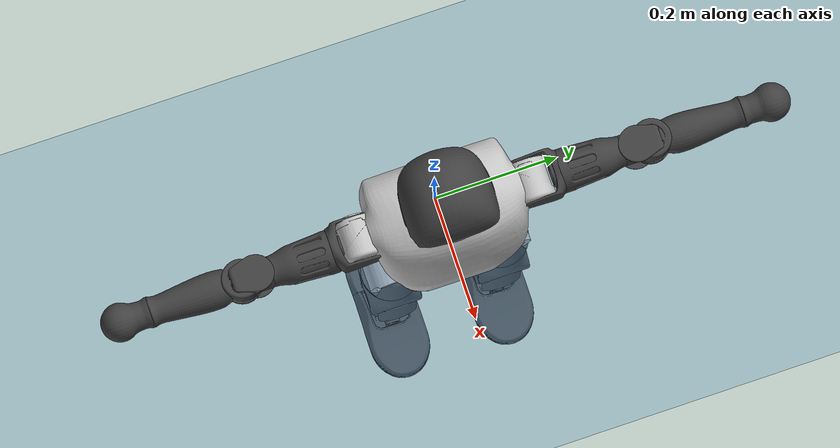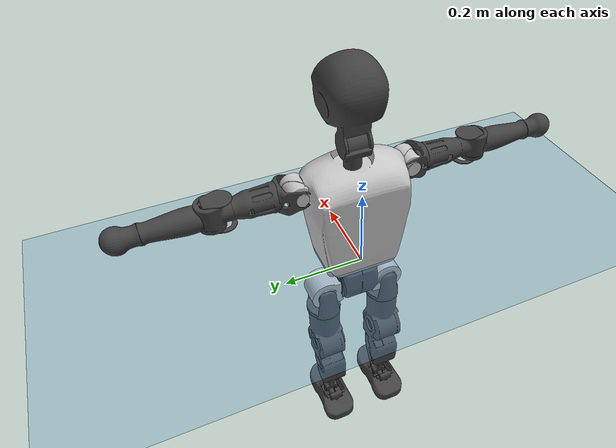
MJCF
<mujoco model="T1">
  <compiler angle="radian" assetdir="assets" balanceinertia="true" inertiafromgeom="false"/>

  <option timestep="0.005" density="1.2" viscosity="2e-05"/>

  <size nkey="1"/>

  <visual>
    <quality shadowsize="8192"/>
    <map shadowclip="0.5"/>
  </visual>

  <default>
    <default class="/">
      <joint armature="0.01" damping="0.01" frictionloss="0.1"/>
      <geom contype="0" conaffinity="0" group="1" solref="-1000 -80"/>
      <site size="0.01 0.005 0.005" group="5"/>
      <general forcelimited="true" biastype="affine" gainprm="25" biasprm="0 -25 -0.6"/>
      <default class="t1">
        <geom rgba="0.25 0.25 0.25 1"/>
        <default class="visual">
          <geom type="mesh" group="2"/>
        </default>
        <default class="collision">
          <geom group="3"/>
        </default>
        <default class="foot">
          <geom size="0.1115 0.05 0.015" type="box" condim="6" group="4" priority="1" solimp="0.015 1 0.015"/>
        </default>
        <default class="reward_collision_sphere">
          <geom group="5" rgba="1 0 0 1"/>
        </default>
      </default>
    </default>
  </default>

  <asset>
    <texture type="skybox" colorspace="auto" name="//unnamed_texture_0" builtin="gradient" rgb1="0.95 0.95 0.95" rgb2="0.95 0.95 0.95" width="100" height="600"/>
    <texture type="2d" colorspace="auto" name="texplane" builtin="checker" rgb1="0.345 0.575 0.748" rgb2="0.345 0.575 0.748" markrgb="1 1 1" width="512" height="512"/>
    <material name="MatPlane" class="/" texture="texplane" texuniform="true" texrepeat="2 2" specular="0.9"/>
    <mesh name="Trunk" class="/" file="Trunk.stl"/>
    <mesh name="H1" class="/" file="H1.stl"/>
    <mesh name="H2" class="/" file="H2.stl"/>
    <mesh name="AL1" class="/" file="AL1.stl"/>
    <mesh name="AL2" class="/" file="AL2.stl"/>
    <mesh name="AL3" class="/" file="AL3.stl"/>
    <mesh name="left_hand_link" class="/" file="left_hand_link.stl"/>
    <mesh name="AR1" class="/" file="AR1.stl"/>
    <mesh name="AR2" class="/" file="AR2.stl"/>
    <mesh name="AR3" class="/" file="AR3.stl"/>
    <mesh name="right_hand_link" class="/" file="right_hand_link.stl"/>
    <mesh name="Waist" class="/" file="Waist.stl"/>
    <mesh name="Hip_Pitch_Left" class="/" file="Hip_Pitch_Left.stl"/>
    <mesh name="Hip_Roll_Left" class="/" file="Hip_Roll_Left.stl"/>
    <mesh name="Hip_Yaw_Left" class="/" file="Hip_Yaw_Left.stl"/>
    <mesh name="Shank_Left" class="/" file="Shank_Left.stl"/>
    <mesh name="Ankle_Cross_Left" class="/" file="Ankle_Cross_Left.stl"/>
    <mesh name="left_foot_link" class="/" file="left_foot_link.stl"/>
    <mesh name="Hip_Pitch_Right" class="/" file="Hip_Pitch_Right.stl"/>
    <mesh name="Hip_Roll_Right" class="/" file="Hip_Roll_Right.stl"/>
    <mesh name="Hip_Yaw_Right" class="/" file="Hip_Yaw_Right.stl"/>
    <mesh name="Shank_Right" class="/" file="Shank_Right.stl"/>
    <mesh name="Ankle_Cross_Right" class="/" file="Ankle_Cross_Right.stl"/>
    <mesh name="right_foot_link" class="/" file="right_foot_link.stl"/>
  </asset>

  <worldbody>
    <geom name="floor" class="/" size="100 100 0.125" type="plane" group="0" material="MatPlane"/>
    <light name="toplight_shadow" class="/" pos="0 0 5" dir="0.0990148 0.0990148 -0.990148" type="directional" ambient="0.04 0.04 0.04" diffuse="0.55 0.55 0.55" specular="0.12 0.12 0.12"/>
    <light name="toplight_fill" class="/" pos="0 0 5" dir="0.0990148 0.0990148 -0.990148" type="directional" castshadow="false" ambient="0.04 0.04 0.04" diffuse="0.3 0.3 0.3" specular="0.08 0.08 0.08"/>
    <body name="trunk" childclass="t1" pos="-8.05378e-05 -0.0014952 -0.000325209" quat="0.999999 -0.000920165 -0.000800255 -0.000472418">
      <inertial pos="0.0523657 -0.00122854 0.106017" quat="0.999887 -0.0124875 -0.00744775 -0.00373266" mass="9.65587" diaginertia="0.0829654 0.032385 0.0609064"/>
      <joint name="//unnamed_joint_0" type="free" armature="0" damping="0" frictionloss="0"/>
      <geom name="//unnamed_geom_1" class="visual" rgba="0.76 0.76 0.76 1" mesh="Trunk"/>
      <geom name="//unnamed_geom_2" class="collision" size="0.0706401 0.0941867 0.14128" pos="0.0581718 0 0.121567" type="box"/>
      <geom name="//unnamed_geom_3" class="reward_collision_sphere" size="0.108315" pos="0.0581718 0 0.101306"/>
      <geom name="//unnamed_geom_4" class="reward_collision_sphere" size="0.014128" pos="0.0581718 0.0716559 0"/>
      <geom name="//unnamed_geom_5" class="reward_collision_sphere" size="0.014128" pos="0.0581718 -0.0716559 0"/>
      <geom name="//unnamed_geom_6" class="reward_collision_sphere" size="0.014128" pos="0.0581718 0.0902021 0.182351"/>
      <geom name="//unnamed_geom_7" class="reward_collision_sphere" size="0.014128" pos="0.0581718 -0.0902021 0.182351"/>
      <site name="imu" pos="0.0126673 0.000242089 -0.0124412" size="0.00941867"/>
      <camera name="track" pos="0 -1.68602 0" quat="0.707107 0.707107 0 0" mode="trackcom"/>
      <camera name="ego_camera" pos="0.118283 0 0.425486" quat="-0.5 -0.5 0.5 0.5"/>
      <body name="H1" pos="0.0571187 1.70593e-05 0.243571" quat="1 -3.1283e-06 3.22823e-05 1.66873e-05">
        <inertial pos="-0.00155441 -0.000897514 0.0581849" quat="0.762874 -0.011293 0.000747149 0.646448" mass="0.365388" diaginertia="0.000200922 9.43789e-05 0.000158995"/>
        <joint name="AAHead_yaw" pos="0 0 0" axis="0.00488534 -0.00105053 0.999988" stiffness="0.00508631" range="-1.51751 1.5728" armature="0.0106739" damping="0.00649652" frictionloss="0.10708"/>
        <geom name="//unnamed_geom_8" class="visual" mesh="H1"/>
        <body name="H2" pos="-0.0020778 -0.0023575 0.0632783" quat="1 2.31888e-05 -0.000269321 0.000153347">
          <inertial pos="0.00945296 -0.00229977 0.0974957" quat="0.987193 0.112584 -0.0693723 -0.08923" mass="0.532752" diaginertia="0.00171944 0.000792682 0.00183665"/>
          <joint name="Head_pitch" pos="0 0 0" axis="-0.00118365 -0.999999 -0.000107141" range="-1.23267 0.36323" armature="0.0104043" damping="0" frictionloss="0.0894186"/>
          <geom name="//unnamed_geom_9" class="visual" mesh="H2"/>
          <geom name="//unnamed_geom_10" class="collision" size="0.0753494" pos="0.0096953 0 0.111437"/>
          <geom name="//unnamed_geom_11" class="reward_collision_sphere" size="0.0847681" pos="0.0193906 0 0.101306"/>
        </body>
      </body>
      <body name="AL1" pos="0.0558571 0.0900288 0.219348" quat="0.999998 -1.12912e-05 0.00164098 0.000592166">
        <inertial pos="-0.00338853 0.0372196 0.000201204" quat="0.503635 0.496352 -0.504403 0.495545" mass="0.43459" diaginertia="0.00114758 0.000522148 0.000295363"/>
        <joint name="Left_Shoulder_Pitch" pos="0 0 0" axis="0.00869895 0.999868 -0.0137235" stiffness="0.000692236" range="-3.34067 1.27341" armature="0.009557" damping="0" frictionloss="0.10172"/>
        <geom name="//unnamed_geom_12" class="visual" rgba="0.76 0.76 0.76 1" mesh="AL1"/>
        <body name="AL2" pos="-0.00143924 0.0408228 0.0001176" quat="1 0.000196992 1.61203e-05 0.000222788">
          <inertial pos="0.00303557 0.0347469 -0.0016929" quat="0.486222 0.514889 -0.48448 0.513573" mass="0.138349" diaginertia="0.000354236 0.00014913 0.000189185"/>
          <joint name="Left_Shoulder_Roll" pos="0 0 0" axis="-0.999998 4.60845e-05 -0.00183483" range="-1.54541 1.74279" armature="0.0107081" damping="0.00674726" frictionloss="0.0945269"/>
          <geom name="//unnamed_geom_13" class="visual" mesh="AL2"/>
          <body name="AL3" pos="0.00102017 0.0506324 0.00161313" quat="1 -0.000246074 -0.000293481 0.00010042">
            <inertial pos="0.00235215 0.06929 -0.000129933" quat="0.701958 0.712188 -0.00255035 0.00606209" mass="0.796238" diaginertia="0.0110254 0.00528869 0.000619024"/>
            <joint name="Left_Elbow_Pitch" pos="0 0 0" axis="-0.00443467 -0.999978 -0.00500112" range="-2.32427 2.25486" armature="0.0104356" damping="0.0156188" frictionloss="0.0925205"/>
            <geom name="//unnamed_geom_14" class="visual" mesh="AL3"/>
            <geom name="//unnamed_geom_15" class="collision" size="0.028256 0.0706401" pos="0 0.0421505 0" quat="0.707105 0.707108 0 0" type="cylinder"/>
            <geom name="//unnamed_geom_16" class="reward_collision_sphere" size="0.0339072"/>
            <body name="left_hand_link" pos="0.00137371 0.123061 -0.0016769" quat="0.999999 -0.000562791 0.00113959 -5.9223e-05">
              <inertial pos="-0.00261035 0.0934249 0.000717312" quat="0.707615 0.706589 0.00295409 0.00173286" mass="0.272183" diaginertia="0.0067564 0.00350049 0.000237636"/>
              <joint name="Left_Elbow_Yaw" pos="0 0 0" axis="0.00254998 -0.00615317 0.999978" range="-2.4456 -0.044997" armature="0.00991532" damping="0.0177489" frictionloss="0.0967363"/>
              <geom name="//unnamed_geom_17" class="visual" mesh="left_hand_link"/>
              <geom name="//unnamed_geom_18" class="collision" size="0.028256 0.0824134" pos="0 0.109591 0" quat="0.707105 0.707108 0 0" type="cylinder"/>
              <geom name="//unnamed_geom_19" class="reward_collision_sphere" size="0.0470934"/>
              <geom name="//unnamed_geom_20" class="reward_collision_sphere" size="0.0329654" pos="0 0.0927312 0"/>
              <geom name="//unnamed_geom_21" class="reward_collision_sphere" size="0.0329654" pos="0 0.181247 0"/>
            </body>
          </body>
        </body>
      </body>
      <body name="AR1" pos="0.0558249 -0.0914098 0.219979" quat="1 -4.19618e-05 0.000326832 -7.99844e-05">
        <inertial pos="-0.0028986 -0.0403064 0.000649116" quat="0.505541 0.486816 -0.508146 0.499225" mass="0.42666" diaginertia="0.00111172 0.000532179 0.000304009"/>
        <joint name="Right_Shoulder_Pitch" pos="0 0 0" axis="-0.0100046 -0.999855 0.0137571" range="-1.21751 3.27787" armature="0.0107162" damping="0.00838278" frictionloss="0.0881893"/>
        <geom name="//unnamed_geom_22" class="visual" rgba="0.76 0.76 0.76 1" mesh="AR1"/>
        <body name="AR2" pos="0.00209643 -0.0361113 -0.00195188" quat="0.999999 0.000737259 -0.000358439 0.00124046">
          <inertial pos="0.00165141 -0.0322785 0.000793497" quat="0.511453 0.486987 -0.508931 0.492187" mass="0.128863" diaginertia="0.000342462 0.000151793 0.000190054"/>
          <joint name="Right_Shoulder_Roll" pos="0 0 0" axis="-0.999984 0.00547791 0.00147646" stiffness="0.00090137" range="-1.73079 1.57568" armature="0.00944983" damping="0.00963865" frictionloss="0.104616"/>
          <geom name="//unnamed_geom_23" class="visual" mesh="AR2"/>
          <body name="AR3" pos="0.00175314 -0.0512729 -0.00208702" quat="1 -1.56533e-05 -1.10431e-05 -1.89786e-05">
            <inertial pos="-0.000461383 -0.074796 -0.000534992" quat="0.714834 0.699228 0.00676614 -0.00685133" mass="0.8527" diaginertia="0.0110361 0.00550065 0.000685662"/>
            <joint name="Right_Elbow_Pitch" pos="0 0 0" axis="-0.00637298 0.999911 -0.0117355" range="-2.32535 2.23007" armature="0.00801218" damping="0.00526489" frictionloss="0.104913"/>
            <geom name="//unnamed_geom_24" class="visual" mesh="AR3"/>
            <geom name="//unnamed_geom_25" class="collision" size="0.028256 0.0706401" pos="0 -0.0421505 0" quat="0.707105 0.707108 0 0" type="cylinder"/>
            <geom name="//unnamed_geom_26" class="reward_collision_sphere" size="0.0339072"/>
            <body name="right_hand_link" pos="-0.000461906 -0.124004 -0.000473839" quat="0.999999 -0.00022093 -0.000278293 0.00126034">
              <inertial pos="-0.000739679 -0.0936166 0.00365038" quat="0.706517 0.707696 0.000401314 -0.000651466" mass="0.272493" diaginertia="0.00693624 0.00338987 0.000225689"/>
              <joint name="Right_Elbow_Yaw" pos="0 0 0" axis="-0.00734914 -0.00113555 0.999972" range="-0.000241778 2.48576" armature="0.0108543" damping="0" frictionloss="0.106364"/>
              <geom name="//unnamed_geom_27" class="visual" mesh="right_hand_link"/>
              <geom name="//unnamed_geom_28" class="collision" size="0.028256 0.0824134" pos="0 -0.109591 0" quat="0.707105 0.707108 0 0" type="cylinder"/>
              <geom name="//unnamed_geom_29" class="reward_collision_sphere" size="0.0470934"/>
              <geom name="//unnamed_geom_30" class="reward_collision_sphere" size="0.0329654" pos="0 -0.0927312 0"/>
              <geom name="//unnamed_geom_31" class="reward_collision_sphere" size="0.0329654" pos="0 -0.181247 0"/>
            </body>
          </body>
        </body>
      </body>
      <body name="Waist" pos="0.0609586 -0.00419638 -0.114287" quat="1 0.000681906 -0.000408371 0.000138004">
        <inertial pos="-0.000191026 6.40965e-05 0.00634863" quat="0.981912 0.00582589 -0.189149 -0.00611828" mass="2.09184" diaginertia="0.00441001 0.00220592 0.00491691"/>
        <joint name="Waist" pos="0 0 0" axis="0.0048201 -0.0123158 0.999913" range="-1.59101 1.51494" armature="0.00956082" damping="0.0190295" frictionloss="0.107287"/>
        <geom name="//unnamed_geom_32" class="visual" mesh="Waist"/>
        <body name="Hip_Pitch_Left" pos="0.000335211 0.0904624 0.000237369" quat="1 -0.000227368 0.000202704 0.000320188">
          <inertial pos="0.000986947 -0.00814633 -0.0183722" quat="0.974871 0.222217 0.015531 -0.00228307" mass="0.861608" diaginertia="0.00153802 0.000639077 0.00134717"/>
          <joint name="Left_Hip_Pitch" pos="0 0 0" axis="-0.0126279 0.99992 -0.000910922" range="-1.80842 1.6217" armature="0.0101421" damping="0" frictionloss="0.0922265"/>
          <geom name="//unnamed_geom_33" class="visual" rgba="0.76 0.76 0.76 1" mesh="Hip_Pitch_Left"/>
          <body name="Hip_Roll_Left" pos="0.00069263 0.00173389 -0.0183503" quat="0.999999 -0.00082389 0.000101791 0.00105648">
            <inertial pos="-0.00168768 0.000321174 -0.0552522" quat="0.707295 -0.00595782 -0.00570598 0.706871" mass="0.315524" diaginertia="0.00149713 0.000626689 0.000532552"/>
            <joint name="Left_Hip_Roll" pos="0 0 0" axis="-0.999946 -0.00995858 0.00294636" stiffness="0.00805774" range="-1.55117 0.188414" armature="0.00874485" damping="0.0162208" frictionloss="0.0989933"/>
            <geom name="//unnamed_geom_34" class="visual" mesh="Hip_Roll_Left"/>
            <geom name="//unnamed_geom_35" class="reward_collision_sphere" size="0.0518027"/>
            <body name="Hip_Yaw_Left" pos="0.00182019 -0.00112369 -0.0850209" quat="1 0.000196224 -0.00012256 -6.78983e-05">
              <inertial pos="-0.00696424 -0.00131421 -0.0903176" quat="0.704204 -0.0258457 -0.0298195 0.7089" mass="1.72942" diaginertia="0.0220248 0.0105447 0.00267148"/>
              <joint name="Left_Hip_Yaw" pos="0 0 0" axis="-0.00131989 -0.00285539 -0.999995" range="-1.06328 1.0048" armature="0.00937163" damping="0.0146403" frictionloss="0.09127"/>
              <geom name="//unnamed_geom_36" class="visual" mesh="Hip_Yaw_Left"/>
              <geom name="//unnamed_geom_37" class="collision" size="0.0470934 0.0753494" type="cylinder"/>
              <body name="Shank_Left" pos="-0.0126346 -0.00274036 -0.137821" quat="1 -0.00019563 0.000292212 -0.000368122">
                <inertial pos="-0.0061794 -0.00199775 -0.125394" quat="0.997258 0.00526462 -0.0128685 0.0726821" mass="1.51581" diaginertia="0.0304723 0.0149835 0.00196483"/>
                <joint name="Left_Knee_Pitch" pos="0 0 0" axis="-0.00343632 0.999994 -0.000943033" range="0.00110715 2.30825" armature="0.0107022" damping="0" frictionloss="0.0977015"/>
                <geom name="//unnamed_geom_38" class="visual" mesh="Shank_Left"/>
                <geom name="//unnamed_geom_39" class="collision" size="0.0470934 0.0706401" pos="0 0 -0.121567" type="cylinder"/>
                <geom name="//unnamed_geom_40" class="reward_collision_sphere" size="0.0612214"/>
                <body name="Ankle_Cross_Left" pos="0.00223894 0.00227951 -0.286982" quat="0.999999 0.000819778 0.000801674 -0.000781003">
                  <inertial pos="-0.00473839 -0.00211507 -0.00718879" quat="0.436351 0.545519 0.560908 0.444286" mass="0.0608668" diaginertia="2.45843e-05 1.12638e-05 1.24329e-05"/>
                  <joint name="Left_Ankle_Pitch" pos="0 0 0" axis="-0.00447138 0.999939 -0.0101187" range="-0.887359 0.345542" armature="0.0092956" damping="0.00810259" frictionloss="0.0914323"/>
                  <geom name="//unnamed_geom_41" class="visual" mesh="Ankle_Cross_Left"/>
                  <body name="left_foot_link" pos="-0.00278369 -0.00282812 -0.0125618" quat="1 -0.000183888 -0.000318473 -0.000186217">
                    <inertial pos="0.00244182 0.000678213 -0.00688183" quat="0.000982485 0.62335 0.000497626 0.781942" mass="0.573382" diaginertia="0.0023599 0.00101129 0.00234151"/>
                    <joint name="Left_Ankle_Roll" pos="0 0 0" axis="-0.999992 0.00387616 6.99373e-05" stiffness="0.00695212" range="-0.45306 0.441776" armature="0.00798317" damping="0" frictionloss="0.0916248"/>
                    <geom name="//unnamed_geom_42" class="visual" mesh="left_foot_link"/>
                    <geom name="left_foot" class="foot" size="0.0923166 0.0448473 0.0138774" pos="0.0096953 0 -0.0151959"/>
                    <geom name="//unnamed_geom_44" class="reward_collision_sphere" size="0.0489771" pos="0.0096953 0 -0.0151959"/>
                    <geom name="//unnamed_geom_45" class="reward_collision_sphere" size="0.028256" pos="0.0921054 -0.0193892 -0.0151959"/>
                    <geom name="//unnamed_geom_46" class="reward_collision_sphere" size="0.028256" pos="-0.0678671 -0.0193892 -0.0151959"/>
                    <site name="left_foot" class="foot" pos="0.0096953 0 -0.0151959" size="0.00941867"/>
                  </body>
                </body>
              </body>
            </body>
          </body>
        </body>
        <body name="Hip_Pitch_Right" pos="-0.00308531 -0.0870941 -0.00184792" quat="0.999999 0.000567475 0.00103935 0.000458265">
          <inertial pos="0.00149674 0.0042975 -0.0182981" quat="0.97412 -0.225144 0.0196047 0.00399261" mass="0.846801" diaginertia="0.00149616 0.000601738 0.00128759"/>
          <joint name="Right_Hip_Pitch" pos="0 0 0" axis="0.00521841 -0.999979 -0.00381416" range="-1.62377 1.78935" armature="0.00878676" damping="0.00893843" frictionloss="0.106147"/>
          <geom name="//unnamed_geom_47" class="visual" rgba="0.76 0.76 0.76 1" mesh="Hip_Pitch_Right"/>
          <body name="Hip_Roll_Right" pos="-0.00112506 -0.00105484 -0.0207873" quat="1 -0.000555773 -0.000256324 -1.10042e-06">
            <inertial pos="-0.00156919 0.00232489 -0.0568923" quat="0.703807 -0.00722499 -0.00411914 0.710343" mass="0.330378" diaginertia="0.00154965 0.000650132 0.000551691"/>
            <joint name="Right_Hip_Roll" pos="0 0 0" axis="-0.999985 0.00537338 -0.00063274" range="-0.193078 1.57577" armature="0.00989091" damping="0.00425657" frictionloss="0.0897413"/>
            <geom name="//unnamed_geom_48" class="visual" mesh="Hip_Roll_Right"/>
            <geom name="//unnamed_geom_49" class="reward_collision_sphere" size="0.0518027"/>
            <body name="Hip_Yaw_Right" pos="-0.000428613 -0.00289529 -0.0820218" quat="1 -7.32383e-05 -2.33616e-05 8.2809e-05">
              <inertial pos="-0.00465559 -0.00227788 -0.0912328" quat="0.714904 -0.0312541 -0.0340453 0.697694" mass="1.81393" diaginertia="0.0229291 0.0107502 0.00279216"/>
              <joint name="Right_Hip_Yaw" pos="0 0 0" axis="0.00183461 0.00101493 -0.999998" stiffness="0.00201935" range="-0.983484 0.945145" armature="0.00843233" damping="0.0217673" frictionloss="0.106778"/>
              <geom name="//unnamed_geom_50" class="visual" mesh="Hip_Yaw_Right"/>
              <geom name="//unnamed_geom_51" class="collision" size="0.0470934 0.0753494" type="cylinder"/>
              <body name="Shank_Right" pos="-0.0114578 0.00227668 -0.135643" quat="0.999999 -0.000941391 -0.000992729 4.46034e-05">
                <inertial pos="-0.00561986 0.00275628 -0.121763" quat="0.999537 -0.00162681 -0.024675 -0.0177423" mass="1.44644" diaginertia="0.0294147 0.0149842 0.00215794"/>
                <joint name="Right_Knee_Pitch" pos="0 0 0" axis="-0.00340029 -0.999991 -0.00238108" range="-2.28287 -0.0628724" armature="0.00991781" damping="0.0188148" frictionloss="0.0921509"/>
                <geom name="//unnamed_geom_52" class="visual" mesh="Shank_Right"/>
                <geom name="//unnamed_geom_53" class="collision" size="0.0470934 0.0706401" pos="0 0 -0.121567" type="cylinder"/>
                <geom name="//unnamed_geom_54" class="reward_collision_sphere" size="0.0612214"/>
                <body name="Ankle_Cross_Right" pos="0.00265659 -0.00327495 -0.283968" quat="0.999999 0.000362734 0.000385319 -0.00094401">
                  <inertial pos="-0.00398389 0.000213474 -0.00548027" quat="0.442705 0.554943 0.553236 0.435868" mass="0.0610635" diaginertia="2.46863e-05 1.09197e-05 1.16908e-05"/>
                  <joint name="Right_Ankle_Pitch" pos="0 0 0" axis="0.00138795 -0.999997 0.00210646" range="-0.405965 0.862422" armature="0.0092808" damping="0.00558585" frictionloss="0.0991051"/>
                  <geom name="//unnamed_geom_55" class="visual" mesh="Ankle_Cross_Right"/>
                  <body name="right_foot_link" pos="0.000646579 -0.00331445 -0.0132765" quat="1 -0.000200049 0.000118747 0.00020629">
                    <inertial pos="0.000362352 -0.000115555 -0.0120005" quat="0.00176947 0.620432 -0.00301163 0.784253" mass="0.571622" diaginertia="0.00229397 0.00101851 0.00226158"/>
                    <joint name="Right_Ankle_Roll" pos="0 0 0" axis="-0.99995 0.00101011 0.00990583" range="-0.396391 0.433368" armature="0.0107551" damping="0.00853775" frictionloss="0.0822895"/>
                    <geom name="//unnamed_geom_56" class="visual" mesh="right_foot_link"/>
                    <geom name="right_foot" class="foot" size="0.0756098 0.043456 0.0134042" pos="0.0096953 0 -0.0151959"/>
                    <geom name="//unnamed_geom_58" class="reward_collision_sphere" size="0.0376747"/>
                    <geom name="//unnamed_geom_59" class="reward_collision_sphere" size="0.028256" pos="0.0096953 0 -0.0151959"/>
                    <geom name="//unnamed_geom_60" class="reward_collision_sphere" size="0.028256" pos="0.0921054 0.0193892 -0.0151959"/>
                    <geom name="//unnamed_geom_61" class="reward_collision_sphere" size="0.028256" pos="-0.0678671 0.0193892 -0.0151959"/>
                    <site name="right_foot" class="foot" pos="0.0096953 0 -0.0151959" size="0.00941867"/>
                  </body>
                </body>
              </body>
            </body>
          </body>
        </body>
      </body>
    </body>
  </worldbody>

  <contact>
    <pair class="/" geom1="floor" geom2="left_foot" name="//unnamed_contact_0"/>
    <pair class="/" geom1="floor" geom2="right_foot" name="//unnamed_contact_1"/>
  </contact>

  <actuator>
    <general name="AAHead_yaw" class="/" joint="AAHead_yaw" forcerange="-6.12623 6.12623" gainprm="23.5719" biasprm="0 -23.5719 -0.553633"/>
    <general name="Head_pitch" class="/" joint="Head_pitch" forcerange="-7.19919 7.19919" gainprm="23.5719" biasprm="0 -23.5719 -0.553633"/>
    <general name="Left_Shoulder_Pitch" class="/" joint="Left_Shoulder_Pitch" forcerange="-17.6523 17.6523" gainprm="23.5719" biasprm="0 -23.5719 -0.553633"/>
    <general name="Left_Shoulder_Roll" class="/" joint="Left_Shoulder_Roll" forcerange="-18.6316 18.6316" gainprm="23.5719" biasprm="0 -23.5719 -0.553633"/>
    <general name="Left_Elbow_Pitch" class="/" joint="Left_Elbow_Pitch" forcerange="-17.3485 17.3485" gainprm="23.5719" biasprm="0 -23.5719 -0.553633"/>
    <general name="Left_Elbow_Yaw" class="/" joint="Left_Elbow_Yaw" forcerange="-17.4627 17.4627" gainprm="23.5719" biasprm="0 -23.5719 -0.553633"/>
    <general name="Right_Shoulder_Pitch" class="/" joint="Right_Shoulder_Pitch" forcerange="-17.1628 17.1628" gainprm="23.5719" biasprm="0 -23.5719 -0.553633"/>
    <general name="Right_Shoulder_Roll" class="/" joint="Right_Shoulder_Roll" forcerange="-16.9098 16.9098" gainprm="23.5719" biasprm="0 -23.5719 -0.553633"/>
    <general name="Right_Elbow_Pitch" class="/" joint="Right_Elbow_Pitch" forcerange="-16.481 16.481" gainprm="23.5719" biasprm="0 -23.5719 -0.553633"/>
    <general name="Right_Elbow_Yaw" class="/" joint="Right_Elbow_Yaw" forcerange="-17.4381 17.4381" gainprm="23.5719" biasprm="0 -23.5719 -0.553633"/>
    <general name="Waist" class="/" joint="Waist" forcerange="-25.5723 25.5723" gainprm="23.5719" biasprm="0 -23.5719 -0.553633"/>
    <general name="Left_Hip_Pitch" class="/" joint="Left_Hip_Pitch" forcerange="-42.4257 42.4257" gainprm="23.5719" biasprm="0 -23.5719 -0.553633"/>
    <general name="Left_Hip_Roll" class="/" joint="Left_Hip_Roll" forcerange="-27.7491 27.7491" gainprm="23.5719" biasprm="0 -23.5719 -0.553633"/>
    <general name="Left_Hip_Yaw" class="/" joint="Left_Hip_Yaw" forcerange="-29.3102 29.3102" gainprm="23.5719" biasprm="0 -23.5719 -0.553633"/>
    <general name="Left_Knee_Pitch" class="/" joint="Left_Knee_Pitch" forcerange="-50.37 50.37" gainprm="23.5719" biasprm="0 -23.5719 -0.553633"/>
    <general name="Left_Ankle_Pitch" class="/" joint="Left_Ankle_Pitch" forcerange="-20.5479 20.5479" gainprm="23.5719" biasprm="0 -23.5719 -0.553633"/>
    <general name="Left_Ankle_Roll" class="/" joint="Left_Ankle_Roll" forcerange="-13.0079 13.0079" gainprm="23.5719" biasprm="0 -23.5719 -0.553633"/>
    <general name="Right_Hip_Pitch" class="/" joint="Right_Hip_Pitch" forcerange="-41.7713 41.7713" gainprm="23.5719" biasprm="0 -23.5719 -0.553633"/>
    <general name="Right_Hip_Roll" class="/" joint="Right_Hip_Roll" forcerange="-25.3018 25.3018" gainprm="23.5719" biasprm="0 -23.5719 -0.553633"/>
    <general name="Right_Hip_Yaw" class="/" joint="Right_Hip_Yaw" forcerange="-31.1143 31.1143" gainprm="23.5719" biasprm="0 -23.5719 -0.553633"/>
    <general name="Right_Knee_Pitch" class="/" joint="Right_Knee_Pitch" forcerange="-55.5035 55.5035" gainprm="23.5719" biasprm="0 -23.5719 -0.553633"/>
    <general name="Right_Ankle_Pitch" class="/" joint="Right_Ankle_Pitch" forcerange="-19.0577 19.0577" gainprm="23.5719" biasprm="0 -23.5719 -0.553633"/>
    <general name="Right_Ankle_Roll" class="/" joint="Right_Ankle_Roll" forcerange="-14.0802 14.0802" gainprm="23.5719" biasprm="0 -23.5719 -0.553633"/>
  </actuator>

  <sensor>
    <gyro site="imu" name="imu_angular_velocity"/>
    <velocimeter site="imu" name="imu_linear_velocity"/>
    <framelinvel objtype="site" objname="left_foot" name="left_foot_global_linear_velocity"/>
    <framelinvel objtype="site" objname="right_foot" name="right_foot_global_linear_velocity"/>
  </sensor>

  <keyframe>
    <key name="home" qpos="0 0 0.6385 1 0 0 0 0 0 0 1.4 0 -0.4 0 -1.4 0 0.4 0 -0.4 0 0 0.8 -0.4 0 0.4 0 0 -0.8 0.4 0"/>
  </keyframe>
</mujoco>
